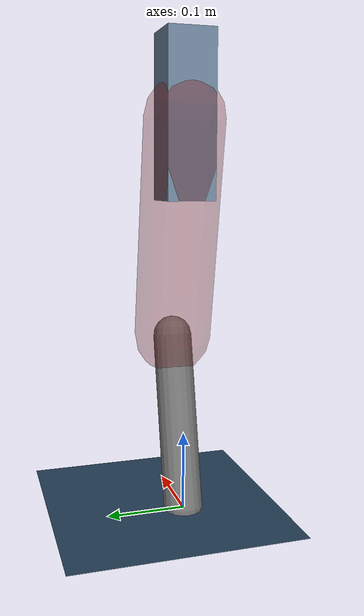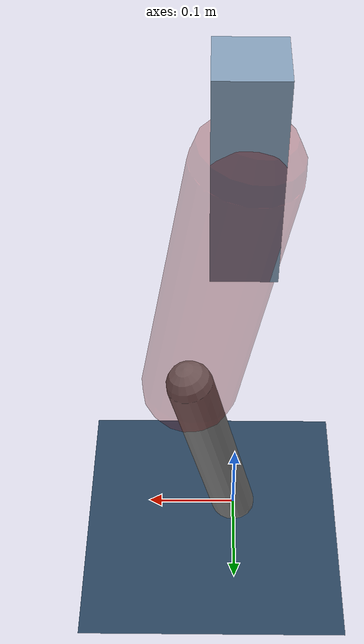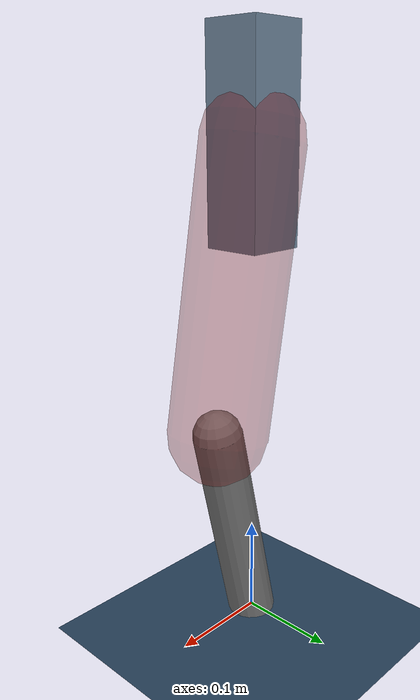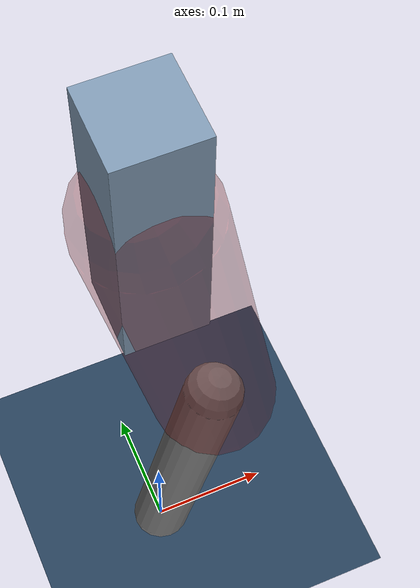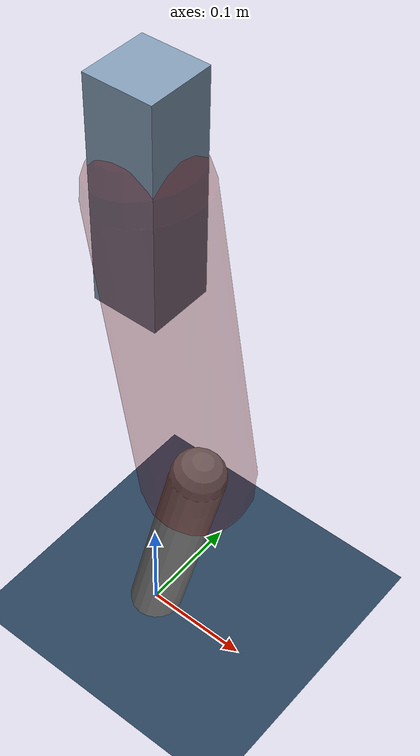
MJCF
<mujoco model="Hopper2D">
	<compiler inertiafromgeom="true" angle="radian" />
	<option timestep="0.001" integrator="implicit" cone="elliptic" solver="Newton" tolerance="1e-10" />

	<default>
		<geom contype="1" conaffinity="1" condim="3" friction="2 0.005 0.0001" solref="0.005 1" />
		<joint limited="true" damping="0.1" />
	</default>

	<asset>
		<texture name="skybox" type="skybox" builtin="gradient" rgb1=".4 .6 .8" rgb2="0 0 0" width="800" height="800" />
		<texture name="grid" type="2d" builtin="checker" rgb1=".1 .2 .3" rgb2=".2 .3 .4" width="300" height="300" mark="edge" markrgb=".2 .3 .4" />
		<material name="ground" texture="grid" texrepeat="1 1" texuniform="true" reflectance="0.1" />
		<material name="leg" rgba="0.5 0.6 0.7 1" />
	</asset>

	<worldbody>

		<geom name="floor" type="plane" size="5 5 0.25" material="ground" />

		<light directional="false" diffuse="0.8 0.8 0.8" specular="0.3 0.3 0.3" pos="0 0 2" dir="0 0 -1" />
		<light mode="targetbodycom" target="base" directional="false" diffuse="0.8 0.8 0.8" specular="0.3 0.3 0.3" pos="0 0 2" dir="0 0 -1" />

		<camera name="fixed" pos="0 -2 1" xyaxes="1 0 0 0 0 1" />
		<camera name="tracking" mode="trackcom" pos="0 -3 1" />

		<body name="root" pos="0 0 0.4976970742395801">
			<joint name="slide_x" type="slide" axis="1 0 0" range="-100 100" />
			<joint name="slide_z" type="slide" axis="0 0 1" range="0 10" />

			<body name="base" pos="0 0 0">
				<geom name="torso" type="box" size="0.03 0.03 0.1" mass="3.588" material="leg" />

				<body name="link1" pos="0 0 0" euler="0 1.3933510604506876 0">
					<joint type="hinge" axis="0 -1 0" pos="0 0 0" name="hinge1" limited="true" range="-3.14 3.14" stiffness="0" damping="0.1" />
					<geom name="thigh" type="capsule" fromto="0 0 0 0.28217769395907594 0 0" size="0.05" rgba="0.5 0 0 0.3" mass="0.9408797736895052" />

					<body name="link2" pos="0.28217769395907594 0 0" euler="0 0.40014385998414526 0">
						<joint type="hinge" axis="0 -1 0" pos="0 0 0" name="hinge2" limited="true" range="-3.14 3.14" stiffness="0" damping="0.1" />
						<geom name="shank" type="capsule" fromto="0 0 0 0.22551938028050422 0 0" size="0.025" mass="0.42226744225245383" />

					</body>
				</body>
			</body>
		</body>
	</worldbody>

	<actuator>
		<motor name="torque1" joint="hinge1" ctrlrange="-125.63725932777078 125.63725932777078" ctrllimited="true" gear="1" />
		<motor name="torque2" joint="hinge2" ctrlrange="-159.05384280769167 159.05384280769167" ctrllimited="true" gear="1" />
	</actuator>
</mujoco>
